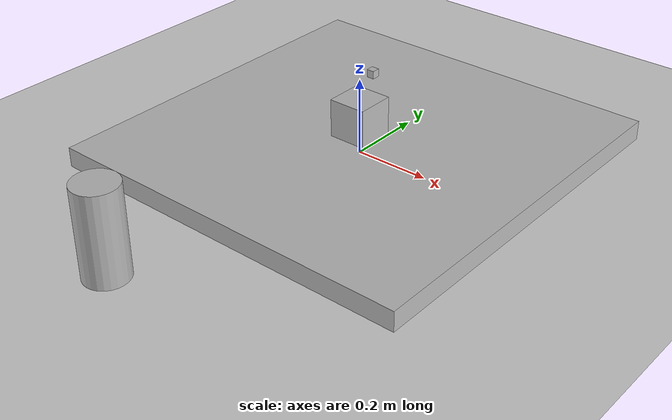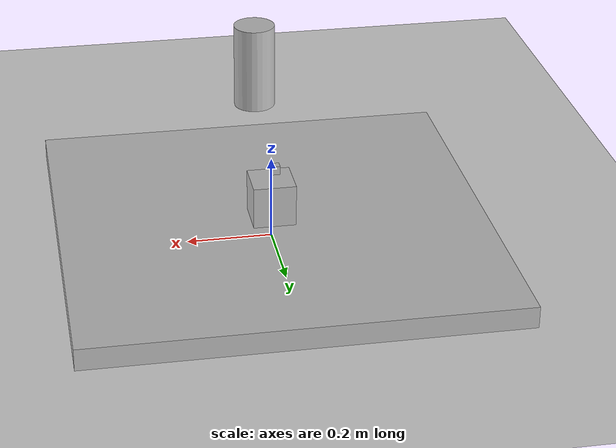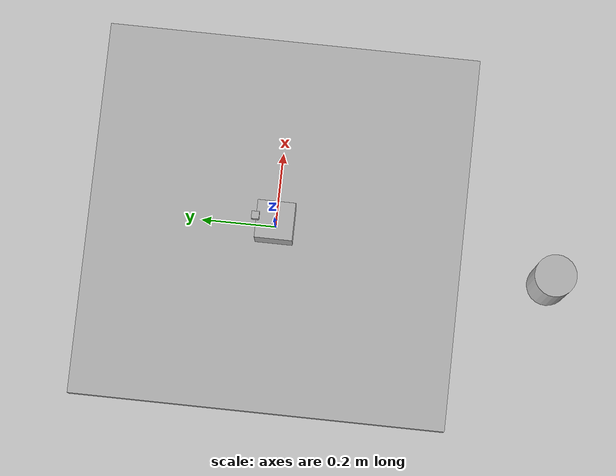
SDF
<sdf version="1.6">
 <world name="default">
  <model name="ground_plane">
   <static>1</static>
   <link name="link">
    <collision name="collision">
     <geometry><plane><normal>0 0 1</normal><size>100 100</size></plane></geometry>
     <surface>
      <contact><collide_bitmask>65535</collide_bitmask></contact>
      <friction><ode><mu>100</mu><mu2>50</mu2></ode></friction>
     </surface>
    </collision>
    <visual name="visual">
     <cast_shadows>0</cast_shadows>
     <geometry><plane><normal>0 0 1</normal><size>100 100</size></plane></geometry>
     <material>
      <script><uri>file://media/materials/scripts/gazebo.material</uri><name>Gazebo/Grey</name></script>
     </material>
    </visual>
   </link>
  </model>
  <gravity>0 0 -9.8</gravity>
  <magnetic_field>6e-06 2.3e-05 -4.2e-05</magnetic_field>
  <atmosphere type="adiabatic"/>
  <physics name="default_physics" default="0" type="ode">
   <max_step_size>0.001</max_step_size>
   <real_time_factor>1</real_time_factor>
   <real_time_update_rate>1000</real_time_update_rate>
  </physics>
  <scene><ambient>0.4 0.4 0.4 1</ambient><background>0.7 0.7 0.7 1</background><shadows>1</shadows></scene>
  <spherical_coordinates>
   <surface_model>EARTH_WGS84</surface_model>
   <latitude_deg>0</latitude_deg>
   <longitude_deg>0</longitude_deg>
   <elevation>0</elevation>
   <heading_deg>0</heading_deg>
  </spherical_coordinates>
  <model name="robot">
   <link name="base">
    <inertial>
     <mass>100</mass>
     <inertia><ixx>0.2</ixx><ixy>0</ixy><ixz>0</ixz><iyy>0.2</iyy><iyz>0</iyz><izz>0.2</izz></inertia>
    </inertial>
    <visual name="base_visual"><geometry><box><size>1 1 0.1</size></box></geometry></visual>
   </link>
   <joint name="fixed" type="fixed"><child>base</child><parent>world</parent></joint>
   <link name="slider">
    <pose>0 0 0.1 0 -0 0</pose>
    <inertial>
     <pose>0 0 1e-06 0 -0 0</pose>
     <mass>1.00001</mass>
     <inertia>
      <ixx>0.00166782</ixx>
      <ixy>-1.03398e-25</ixy>
      <ixz>0</ixz>
      <iyy>0.0016678</iyy>
      <iyz>-4.99995e-08</iyz>
      <izz>0.00166772</izz>
     </inertia>
    </inertial>
    <collision name="slider_fixed_joint_lump__camera_link_collision">
     <pose>0 0.05 0.1 3.14159 1.57079 -1.57159</pose>
     <geometry><box><size>0.02 0.02 0.02</size></box></geometry>
    </collision>
    <visual name="slider_visual"><geometry><box><size>0.1 0.1 0.1</size></box></geometry></visual>
    <visual name="slider_fixed_joint_lump__camera_link_visual_1">
     <pose>0 0.05 0.1 3.14159 1.57079 -1.57159</pose>
     <geometry><box><size>0.02 0.02 0.02</size></box></geometry>
     <material><script><uri>__default__</uri><name>__default__</name></script></material>
    </visual>
    <sensor name="realsense_R200" type="depth">
     <always_on>1</always_on>
     <camera name="__default__">
      <horizontal_fov>1.3439</horizontal_fov>
      <image><width>600</width><height>480</height><format>R8G8B8</format></image>
      <depth_camera><output>depths</output></depth_camera>
      <clip><near>0.03</near><far>2</far></clip>
     </camera>
     <plugin name="camera_controller" filename="libgazebo_ros_openni_kinect.so">
      <baseline>0.2</baseline>
      <alwaysOn>1</alwaysOn>
      <updateRate>10.0</updateRate>
      <cameraName>camera</cameraName>
      <frameName>camera_link</frameName>
      <imageTopicName>rgb/image_raw</imageTopicName>
      <depthImageTopicName>depth/image_raw</depthImageTopicName>
      <pointCloudTopicName>depth/points</pointCloudTopicName>
      <cameraInfoTopicName>rgb/camera_info</cameraInfoTopicName>
      <depthImageCameraInfoTopicName>depth/camera_info</depthImageCameraInfoTopicName>
      <pointCloudCutoff>0.4</pointCloudCutoff>
      <hackBaseline>0.07</hackBaseline>
      <distortionK1>0.0</distortionK1>
      <distortionK2>0.0</distortionK2>
      <distortionK3>0.0</distortionK3>
      <distortionT1>0.0</distortionT1>
      <distortionT2>0.0</distortionT2>
      <CxPrime>0.0</CxPrime>
      <Cx>0.0</Cx>
      <Cy>0.0</Cy>
      <focalLength>0</focalLength>
      <hackBaseline>0</hackBaseline>
      <robotNamespace>/</robotNamespace>
     </plugin>
     <pose>0 0.05 0.1 3.14159 1.57079 -1.57159</pose>
    </sensor>
   </link>
   <joint name="joint1" type="prismatic">
    <child>slider</child>
    <parent>base</parent>
    <axis>
     <xyz>1 0 0</xyz>
     <limit><lower>-0.5</lower><upper>0.5</upper><effort>1</effort><velocity>0.1</velocity></limit>
     <dynamics><spring_reference>0</spring_reference><spring_stiffness>0</spring_stiffness></dynamics>
     <use_parent_model_frame>1</use_parent_model_frame>
    </axis>
   </joint>
   <static>0</static>
   <plugin name="gazebo_ros_control" filename="libgazebo_ros_control.so">
    <robotNamespace>/robot</robotNamespace>
   </plugin>
  </model>
  <model name="beer">
   <link name="link">
    <pose>0 0 0.115 0 -0 0</pose>
    <inertial>
     <mass>0.39</mass>
     <inertia><ixx>0.00058</ixx><ixy>0</ixy><ixz>0</ixz><iyy>0.00058</iyy><iyz>0</iyz><izz>0.00019</izz></inertia>
    </inertial>
    <collision name="collision">
     <geometry><cylinder><radius>0.055</radius><length>0.23</length></cylinder></geometry>
    </collision>
    <visual name="visual">
     <geometry><cylinder><radius>0.055</radius><length>0.23</length></cylinder></geometry>
     <material>
      <script>
       <uri>model://beer/materials/scripts</uri>
       <uri>model://beer/materials/textures</uri>
       <name>Beer/Diffuse</name>
      </script>
     </material>
    </visual>
   </link>
   <pose>-0.079021 -0.73747 -7e-06 -1e-06 -0 -2e-06</pose>
  </model>
 </world>
</sdf>
